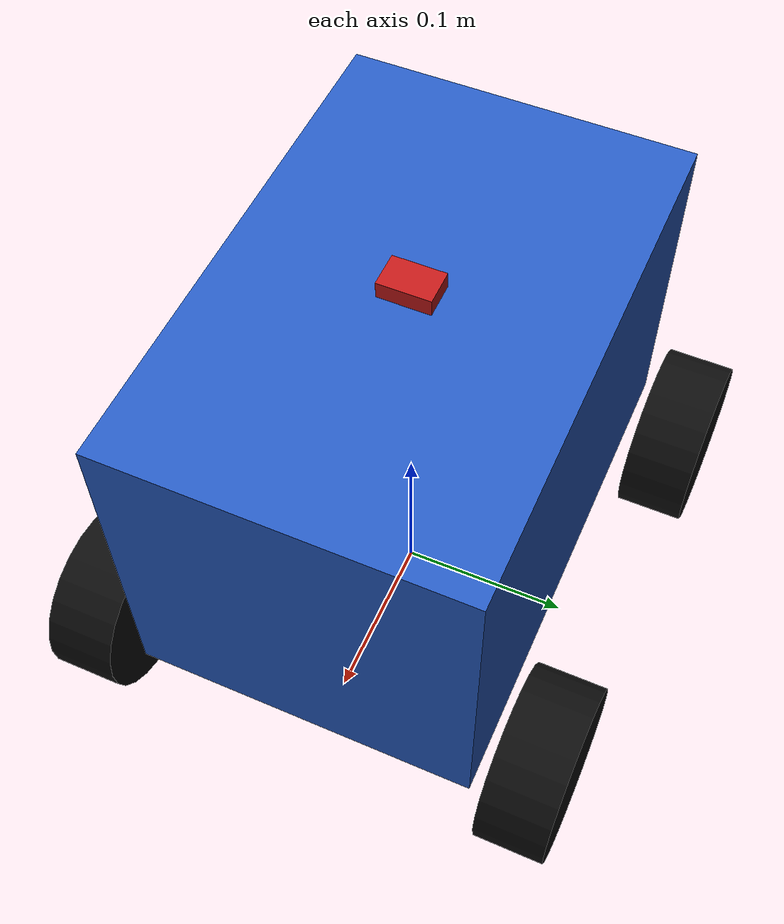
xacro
<?xml version="1.0"?>
<robot xmlns:xacro="http://www.ros.org/wiki/xacro" name="treasure_car">
  <xacro:include filename="treasure_car_properties.xacro"/>
  <xacro:include filename="treasure_car_ros2_control.xacro"/>

  <!-- Materials -->
  <material name="body_blue">
    <color rgba="0.15 0.35 0.75 1.0"/>
  </material>
  <material name="wheel_dark">
    <color rgba="0.05 0.05 0.05 1.0"/>
  </material>
  <material name="imu_red">
    <color rgba="0.75 0.10 0.10 1.0"/>
  </material>

  <link name="base_footprint"/>

  <link name="base_link"/>
  <joint name="base_link_joint" type="fixed">
    <parent link="base_footprint"/>
    <child link="base_link"/>
    <origin xyz="0 0 0.15" rpy="0 0 0"/>
  </joint>

  <link name="car_body">
    <inertial>
      <origin xyz="0 0 0" rpy="0 0 0"/>
      <mass value="3.0"/>
      <!-- Box: 0.30 (X) x 0.20 (Y) x 0.20 (Z). -->
      <inertia ixx="0.0200" ixy="0" ixz="0" iyy="0.0325" iyz="0" izz="0.0325"/>
    </inertial>
    <visual>
      <origin xyz="0 0 0" rpy="0 0 0"/>
      <geometry>
        <box size="${body_length} ${body_width} ${body_height}"/>
      </geometry>
      <material name="body_blue"/>
    </visual>
    <collision>
      <origin xyz="0 0 0" rpy="0 0 0"/>
      <geometry>
        <box size="${body_length} ${body_width} ${body_height}"/>
      </geometry>
    </collision>
  </link>
  <joint name="car_body_joint" type="fixed">
    <parent link="base_link"/>
    <child link="car_body"/>
    <origin xyz="0 0 0" rpy="0 0 0"/>
  </joint>

  <link name="IMU_1">
    <inertial>
      <origin xyz="0 0 0" rpy="0 0 0"/>
      <mass value="0.01"/>
      <inertia ixx="1e-06" ixy="0" ixz="0" iyy="1e-06" iyz="0" izz="1e-06"/>
    </inertial>
    <visual>
      <origin xyz="0 0 0" rpy="0 0 0"/>
      <geometry>
        <box size="0.02 0.03 0.01"/>
      </geometry>
      <material name="imu_red"/>
    </visual>
    <collision>
      <origin xyz="0 0 0" rpy="0 0 0"/>
      <geometry>
        <box size="0.02 0.03 0.01"/>
      </geometry>
    </collision>
  </link>
  <joint name="IMU_1_joint" type="fixed">
    <parent link="car_body"/>
    <child link="IMU_1"/>
    <origin xyz="0 0 0.105" rpy="0 0 0"/>
  </joint>

  <xacro:macro name="wheel_link" params="name">
    <link name="${name}">
      <inertial>
        <origin xyz="0 0 0" rpy="0 0 0"/>
        <mass value="0.5"/>
        <inertia ixx="0.000379" ixy="0" ixz="0" iyy="0.000379" iyz="0" izz="0.000625"/>
      </inertial>
      <visual>
        <origin xyz="0 0 0" rpy="0 0 0"/>
        <geometry>
          <cylinder radius="${wheel_radius}" length="${wheel_length}"/>
        </geometry>
        <material name="wheel_dark"/>
      </visual>
      <collision>
        <origin xyz="0 0 0" rpy="0 0 0"/>
        <geometry>
          <cylinder radius="${wheel_radius}" length="${wheel_length}"/>
        </geometry>
      </collision>
    </link>
  </xacro:macro>

  <xacro:macro name="wheel_joint" params="name parent child xyz">
    <joint name="${name}" type="continuous">
      <parent link="${parent}"/>
      <child link="${child}"/>
      <origin xyz="${xyz}" rpy="-1.57079632679 0 0"/>
      <axis xyz="0 0 1"/>
      <limit effort="10.0" velocity="10.0"/>
      <dynamics damping="0.01" friction="0.0"/>
    </joint>
  </xacro:macro>

  <xacro:wheel_link name="left_front_wheel"/>
  <xacro:wheel_link name="left_rear_wheel"/>
  <xacro:wheel_link name="right_front_wheel"/>
  <xacro:wheel_link name="right_rear_wheel"/>

  <xacro:wheel_joint name="left_front_wheel_joint" parent="car_body" child="left_front_wheel" xyz="0.12 0.13 -0.10"/>
  <xacro:wheel_joint name="left_rear_wheel_joint" parent="car_body" child="left_rear_wheel" xyz="-0.12 0.13 -0.10"/>
  <xacro:wheel_joint name="right_front_wheel_joint" parent="car_body" child="right_front_wheel" xyz="0.12 -0.13 -0.10"/>
  <xacro:wheel_joint name="right_rear_wheel_joint" parent="car_body" child="right_rear_wheel" xyz="-0.12 -0.13 -0.10"/>

  <gazebo reference="IMU_1">
    <sensor name="IMU_sensor" type="imu">
      <always_on>true</always_on>
      <update_rate>100</update_rate>
      <visualize>false</visualize>
      <topic>/imu/data</topic>
      <imu/>
    </sensor>
  </gazebo>
</robot>

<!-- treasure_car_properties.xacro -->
<robot xmlns:xacro="http://www.ros.org/wiki/xacro">
  <!-- Wheels: cylinder axis is local Z before the joint pitch rotation. -->
  <xacro:property name="wheel_length" value="0.04"/>
  <xacro:property name="wheel_radius" value="0.05"/>
  <xacro:property name="wheel_separation" value="0.26"/>
  <xacro:property name="body_length" value="0.30"/>
  <xacro:property name="body_width" value="0.20"/>
  <xacro:property name="body_height" value="0.20"/>
</robot>
